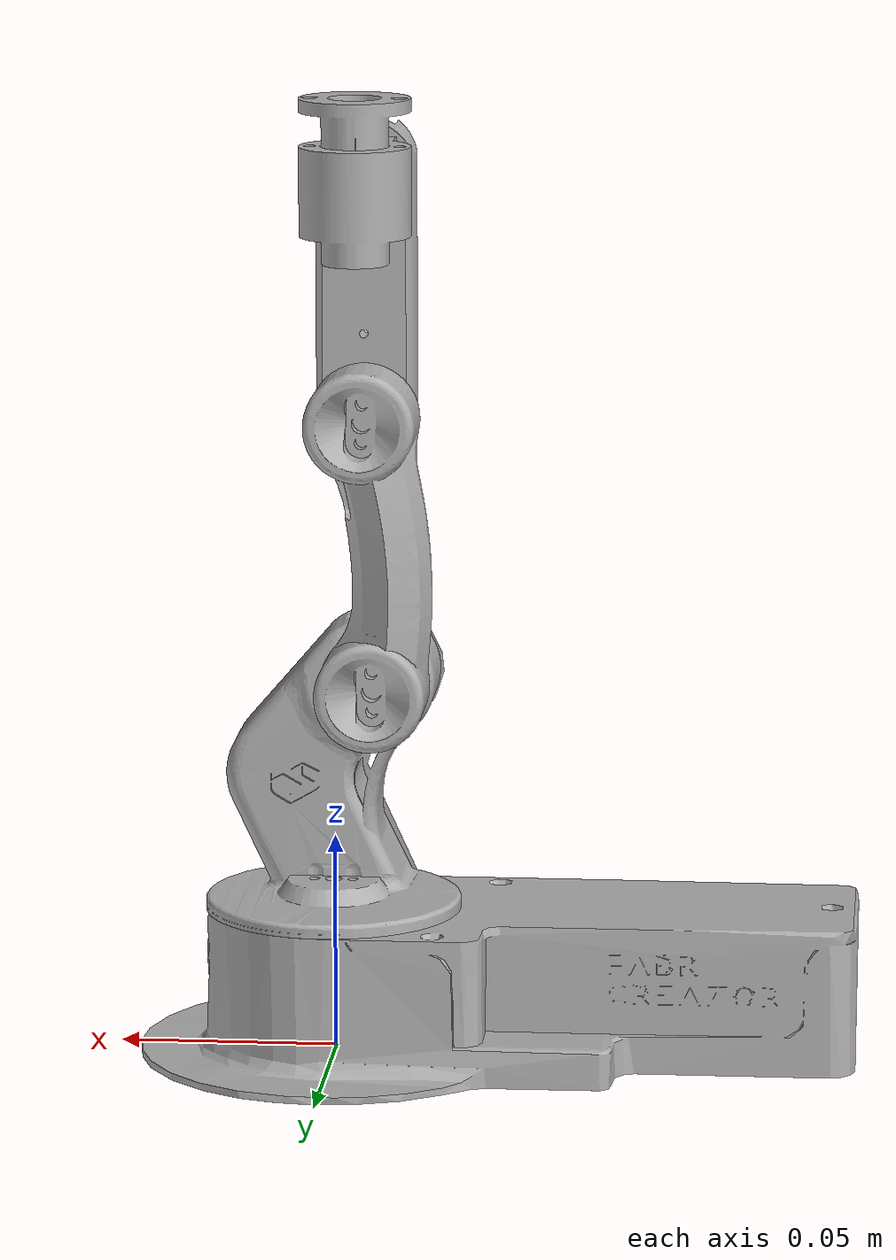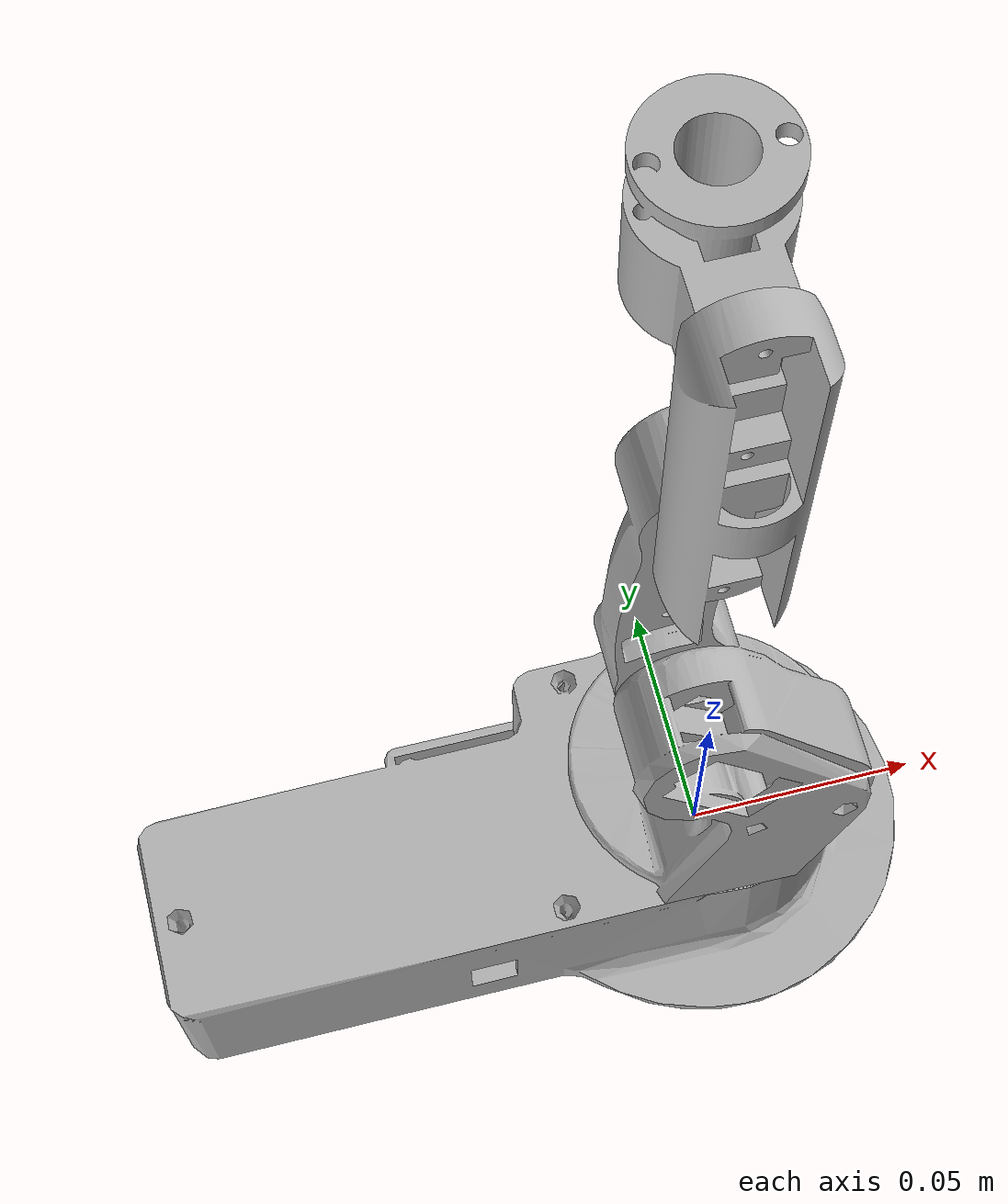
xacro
<?xml version="1.0" ?>
<robot name="New" xmlns:xacro="http://www.ros.org/wiki/xacro">

<xacro:include filename="$(find New_description)/urdf/materials.xacro" />
<xacro:include filename="$(find New_description)/urdf/New.trans" />
<xacro:include filename="$(find New_description)/urdf/New.gazebo" />
<link name="base_link">
  <inertial>
    <origin xyz="-0.04149471418155845 -0.0025971159520870152 0.013779631134822855" rpy="0 0 0"/>
    <mass value="0.5842942923229515"/>
    <inertia ixx="0.00031" iyy="0.001251" izz="0.001356" ixy="-7.7e-05" iyz="6e-06" ixz="2.3e-05"/>
  </inertial>
  <visual>
    <origin xyz="0 0 0" rpy="0 0 0"/>
    <geometry>
      <mesh filename="package://New_description/meshes/base_link.stl" scale="0.001 0.001 0.001"/>
    </geometry>
    <material name="silver"/>
  </visual>
  <collision>
    <origin xyz="0 0 0" rpy="0 0 0"/>
    <geometry>
      <mesh filename="package://New_description/meshes/base_link.stl" scale="0.001 0.001 0.001"/>
    </geometry>
  </collision>
</link>

<link name="link_1_1">
  <inertial>
    <origin xyz="0.001392191052634139 -0.009015999327819468 0.0235284962411932" rpy="0 0 0"/>
    <mass value="0.2524132842018846"/>
    <inertia ixx="0.000128" iyy="0.000137" izz="7.6e-05" ixy="2e-06" iyz="1.5e-05" ixz="8e-06"/>
  </inertial>
  <visual>
    <origin xyz="-0.000476 -0.0 -0.033399" rpy="0 0 0"/>
    <geometry>
      <mesh filename="package://New_description/meshes/link_1_1.stl" scale="0.001 0.001 0.001"/>
    </geometry>
    <material name="silver"/>
  </visual>
  <collision>
    <origin xyz="-0.000476 -0.0 -0.033399" rpy="0 0 0"/>
    <geometry>
      <mesh filename="package://New_description/meshes/link_1_1.stl" scale="0.001 0.001 0.001"/>
    </geometry>
  </collision>
</link>

<link name="link_2_1">
  <inertial>
    <origin xyz="0.00014024094001882127 0.007326916010056965 0.030962792328760272" rpy="0 0 0"/>
    <mass value="0.13407278823863725"/>
    <inertia ixx="0.000109" iyy="0.000112" izz="1e-05" ixy="-0.0" iyz="1e-06" ixz="-4e-06"/>
  </inertial>
  <visual>
    <origin xyz="0.009476 0.001031 -0.085858" rpy="0 0 0"/>
    <geometry>
      <mesh filename="package://New_description/meshes/link_2_1.stl" scale="0.001 0.001 0.001"/>
    </geometry>
    <material name="silver"/>
  </visual>
  <collision>
    <origin xyz="0.009476 0.001031 -0.085858" rpy="0 0 0"/>
    <geometry>
      <mesh filename="package://New_description/meshes/link_2_1.stl" scale="0.001 0.001 0.001"/>
    </geometry>
  </collision>
</link>

<link name="link_3_1">
  <inertial>
    <origin xyz="2.7826710637217367e-06 -0.006259371756109719 0.026211019639232058" rpy="0 0 0"/>
    <mass value="0.10702282683217142"/>
    <inertia ixx="4.7e-05" iyy="5.1e-05" izz="8e-06" ixy="0.0" iyz="0.0" ixz="0.0"/>
  </inertial>
  <visual>
    <origin xyz="0.006834 0.001231 -0.148989" rpy="0 0 0"/>
    <geometry>
      <mesh filename="package://New_description/meshes/link_3_1.stl" scale="0.001 0.001 0.001"/>
    </geometry>
    <material name="silver"/>
  </visual>
  <collision>
    <origin xyz="0.006834 0.001231 -0.148989" rpy="0 0 0"/>
    <geometry>
      <mesh filename="package://New_description/meshes/link_3_1.stl" scale="0.001 0.001 0.001"/>
    </geometry>
  </collision>
</link>

<link name="link_4_1">
  <inertial>
    <origin xyz="0.00016784198048194927 0.016597930425015908 0.0023250889260546803" rpy="0 0 0"/>
    <mass value="0.07823910234886815"/>
    <inertia ixx="1.2e-05" iyy="1e-05" izz="9e-06" ixy="-0.0" iyz="-0.0" ixz="0.0"/>
  </inertial>
  <visual>
    <origin xyz="0.006957 0.001301 -0.201505" rpy="0 0 0"/>
    <geometry>
      <mesh filename="package://New_description/meshes/link_4_1.stl" scale="0.001 0.001 0.001"/>
    </geometry>
    <material name="silver"/>
  </visual>
  <collision>
    <origin xyz="0.006957 0.001301 -0.201505" rpy="0 0 0"/>
    <geometry>
      <mesh filename="package://New_description/meshes/link_4_1.stl" scale="0.001 0.001 0.001"/>
    </geometry>
  </collision>
</link>

<joint name="Joint_1" type="continuous">
  <origin xyz="0.000476 0.0 0.033399" rpy="0 0 0"/>
  <parent link="base_link"/>
  <child link="link_1_1"/>
  <axis xyz="0.0 0.0 1.0"/>
</joint>

<joint name="Joint_2" type="continuous">
  <origin xyz="-0.009952 -0.001031 0.052459" rpy="0 0 0"/>
  <parent link="link_1_1"/>
  <child link="link_2_1"/>
  <axis xyz="0.0 1.0 0.0"/>
</joint>

<joint name="Joint_3" type="continuous">
  <origin xyz="0.002642 -0.0002 0.063131" rpy="0 0 0"/>
  <parent link="link_2_1"/>
  <child link="link_3_1"/>
  <axis xyz="0.0 -1.0 0.0"/>
</joint>

<joint name="Joint_4" type="continuous">
  <origin xyz="-0.000123 -7e-05 0.052516" rpy="0 0 0"/>
  <parent link="link_3_1"/>
  <child link="link_4_1"/>
  <axis xyz="0.0 1.0 0.0"/>
</joint>

<!-- Transmissions for ros_control -->
<transmission name="Joint_1_trans">
  <type>transmission_interface/SimpleTransmission</type>
  <joint name="Joint_1">
    <hardwareInterface>hardware_interface/EffortJointInterface</hardwareInterface>
  </joint>
  <actuator name="Joint_1_motor">
    <hardwareInterface>hardware_interface/EffortJointInterface</hardwareInterface>
    <mechanicalReduction>1</mechanicalReduction>
  </actuator>
</transmission>

<transmission name="Joint_2_trans">
  <type>transmission_interface/SimpleTransmission</type>
  <joint name="Joint_2">
    <hardwareInterface>hardware_interface/EffortJointInterface</hardwareInterface>
  </joint>
  <actuator name="Joint_2_motor">
    <hardwareInterface>hardware_interface/EffortJointInterface</hardwareInterface>
    <mechanicalReduction>1</mechanicalReduction>
  </actuator>
</transmission>

<transmission name="Joint_3_trans">
  <type>transmission_interface/SimpleTransmission</type>
  <joint name="Joint_3">
    <hardwareInterface>hardware_interface/EffortJointInterface</hardwareInterface>
  </joint>
  <actuator name="Joint_3_motor">
    <hardwareInterface>hardware_interface/EffortJointInterface</hardwareInterface>
    <mechanicalReduction>1</mechanicalReduction>
  </actuator>
</transmission>

<transmission name="Joint_4_trans">
  <type>transmission_interface/SimpleTransmission</type>
  <joint name="Joint_4">
    <hardwareInterface>hardware_interface/EffortJointInterface</hardwareInterface>
  </joint>
  <actuator name="Joint_4_motor">
    <hardwareInterface>hardware_interface/EffortJointInterface</hardwareInterface>
    <mechanicalReduction>1</mechanicalReduction>
  </actuator>
</transmission>

</robot>

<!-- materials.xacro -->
<robot name="New" xmlns:xacro="http://www.ros.org/wiki/xacro" >

<material name="silver">
  <color rgba="0.700 0.700 0.700 1.000"/>
</material>

</robot>

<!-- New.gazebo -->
<robot name="New" xmlns:xacro="http://www.ros.org/wiki/xacro" >

<xacro:property name="body_color" value="Gazebo/Silver" />

<gazebo>
  <plugin name="control" filename="libgazebo_ros_control.so"/>
</gazebo>
<gazebo reference="base_link">
  <material>${body_color}</material>
  <mu1>0.2</mu1>
  <mu2>0.2</mu2>
  <selfCollide>true</selfCollide>
  <gravity>true</gravity>
</gazebo>

<gazebo reference="link_1_1">
  <material>${body_color}</material>
  <mu1>0.2</mu1>
  <mu2>0.2</mu2>
  <selfCollide>true</selfCollide>
</gazebo>

<gazebo reference="link_2_1">
  <material>${body_color}</material>
  <mu1>0.2</mu1>
  <mu2>0.2</mu2>
  <selfCollide>true</selfCollide>
</gazebo>

<gazebo reference="link_3_1">
  <material>${body_color}</material>
  <mu1>0.2</mu1>
  <mu2>0.2</mu2>
  <selfCollide>true</selfCollide>
</gazebo>

<gazebo reference="link_4_1">
  <material>${body_color}</material>
  <mu1>0.2</mu1>
  <mu2>0.2</mu2>
  <selfCollide>true</selfCollide>
</gazebo>

</robot>
